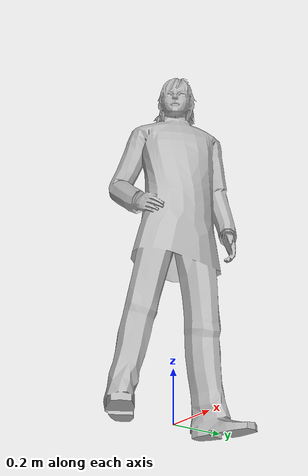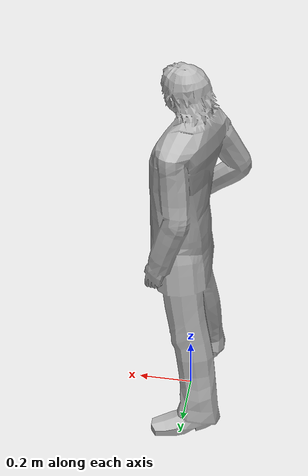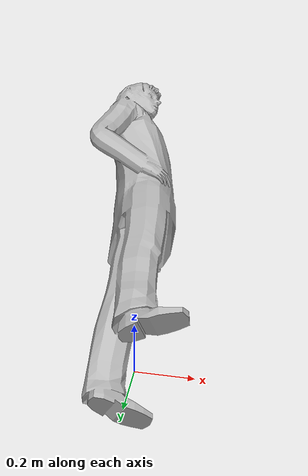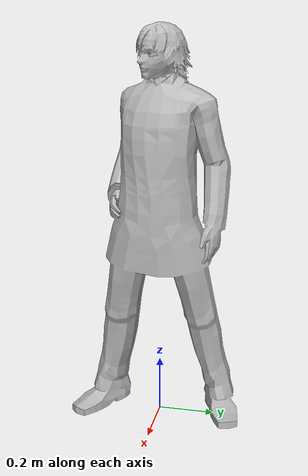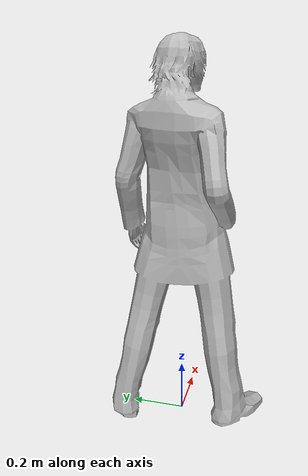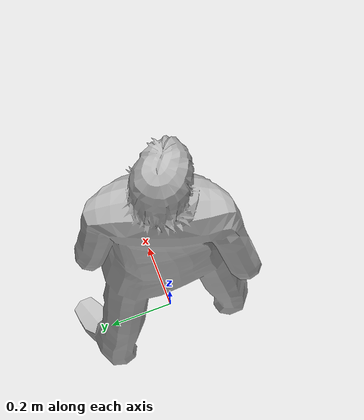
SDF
<?xml version="1.0"?>
<sdf version="1.4">
  <model name="human">
    <static>false</static>
    <link name="link">
      <collision name="collision">
        <pose>0 0 0.75 0 0 1.57</pose>
        <geometry>
          <box>
            <size>0.62 0.24 1.50</size>
          </box>
        </geometry>
      </collision>
      <visual name="visual">
        <pose>0 0 0 0 0 1.57</pose>
        <geometry>
          <mesh>
            <uri>model://human/meshes/human.dae</uri>
            <scale>0.30 0.30 0.30</scale>
          </mesh>
        </geometry>

      </visual>
    </link>
  </model>
</sdf>
